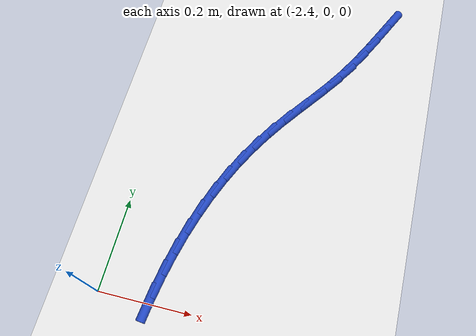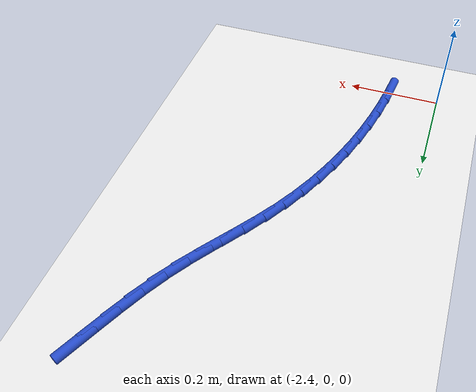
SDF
<sdf version="1.6">
 <world name="default">
  <model name="ground_plane">
   <static>1</static>
   <link name="link">
    <collision name="collision">
     <geometry><plane><normal>0 0 1</normal><size>100 100</size></plane></geometry>
     <surface><friction><ode><mu>100</mu><mu2>50</mu2></ode></friction></surface>
    </collision>
    <visual name="visual">
     <cast_shadows>0</cast_shadows>
     <geometry><plane><normal>0 0 1</normal><size>100 100</size></plane></geometry>
     <material>
      <script><uri>file://media/materials/scripts/gazebo.material</uri><name>Gazebo/WhiteGlow</name></script>
     </material>
    </visual>
   </link>
  </model>
  <model name="line">
   <link name="link_56">
    <pose>-1.920355423058988 0.793030612902918 0.01 0 1.57 1.1283428545215968</pose>
    <collision name="collision">
     <geometry><cylinder><radius>0.01</radius><length>0.08</length></cylinder></geometry>
    </collision>
    <visual name="visual">
     <material>
      <script><name>Gazebo/Blue</name><uri>file://media/materials/scripts/gazebo.material</uri></script>
     </material>
     <geometry><cylinder><radius>0.01</radius><length>0.08</length></cylinder></geometry>
    </visual>
   </link>
   <link name="link_57">
    <pose>-1.9414020889185035 0.7486078627954513 0.01 0 1.57 1.1195094449584073</pose>
    <collision name="collision">
     <geometry><cylinder><radius>0.01</radius><length>0.08</length></cylinder></geometry>
    </collision>
    <visual name="visual">
     <material>
      <script><name>Gazebo/Blue</name><uri>file://media/materials/scripts/gazebo.material</uri></script>
     </material>
     <geometry><cylinder><radius>0.01</radius><length>0.08</length></cylinder></geometry>
    </visual>
   </link>
   <link name="link_58">
    <pose>-1.962820146451315 0.7044144093955771 0.01 0 1.57 1.0927500852803989</pose>
    <collision name="collision">
     <geometry><cylinder><radius>0.01</radius><length>0.08</length></cylinder></geometry>
    </collision>
    <visual name="visual">
     <material>
      <script><name>Gazebo/Blue</name><uri>file://media/materials/scripts/gazebo.material</uri></script>
     </material>
     <geometry><cylinder><radius>0.01</radius><length>0.08</length></cylinder></geometry>
    </visual>
   </link>
   <link name="link_59">
    <pose>-1.9853999650549596 0.6608349686086172 0.01 0 1.57 1.048114588843749</pose>
    <collision name="collision">
     <geometry><cylinder><radius>0.01</radius><length>0.08</length></cylinder></geometry>
    </collision>
    <visual name="visual">
     <material>
      <script><name>Gazebo/Blue</name><uri>file://media/materials/scripts/gazebo.material</uri></script>
     </material>
     <geometry><cylinder><radius>0.01</radius><length>0.08</length></cylinder></geometry>
    </visual>
   </link>
   <link name="link_60">
    <pose>-2.009931914126972 0.6182542563398917 0.01 0 1.57 0.9909827484971178</pose>
    <collision name="collision">
     <geometry><cylinder><radius>0.01</radius><length>0.08</length></cylinder></geometry>
    </collision>
    <visual name="visual">
     <material>
      <script><name>Gazebo/Blue</name><uri>file://media/materials/scripts/gazebo.material</uri></script>
     </material>
     <geometry><cylinder><radius>0.01</radius><length>0.08</length></cylinder></geometry>
    </visual>
   </link>
   <link name="link_61">
    <pose>-2.036981251243193 0.5769513812375051 0.01 0 1.57 0.9507061022593876</pose>
    <collision name="collision">
     <geometry><cylinder><radius>0.01</radius><length>0.08</length></cylinder></geometry>
    </collision>
    <visual name="visual">
     <material>
      <script><name>Gazebo/Blue</name><uri>file://media/materials/scripts/gazebo.material</uri></script>
     </material>
     <geometry><cylinder><radius>0.01</radius><length>0.08</length></cylinder></geometry>
    </visual>
   </link>
   <link name="link_62">
    <pose>-2.0658011623294024 0.5365899165805582 0.01 0 1.57 0.9372060497208428</pose>
    <collision name="collision">
     <geometry><cylinder><radius>0.01</radius><length>0.08</length></cylinder></geometry>
    </collision>
    <visual name="visual">
     <material>
      <script><name>Gazebo/Blue</name><uri>file://media/materials/scripts/gazebo.material</uri></script>
     </material>
     <geometry><cylinder><radius>0.01</radius><length>0.08</length></cylinder></geometry>
    </visual>
   </link>
   <link name="link_63">
    <pose>-2.0951707699177327 0.49661103713361604 0.01 0 1.57 0.9502939800866536</pose>
    <collision name="collision">
     <geometry><cylinder><radius>0.01</radius><length>0.08</length></cylinder></geometry>
    </collision>
    <visual name="visual">
     <material>
      <script><name>Gazebo/Blue</name><uri>file://media/materials/scripts/gazebo.material</uri></script>
     </material>
     <geometry><cylinder><radius>0.01</radius><length>0.08</length></cylinder></geometry>
    </visual>
   </link>
   <link name="link_64">
    <pose>-2.123868551301867 0.45645561495895715 0.01 0 1.57 0.9901048696037019</pose>
    <collision name="collision">
     <geometry><cylinder><radius>0.01</radius><length>0.08</length></cylinder></geometry>
    </collision>
    <visual name="visual">
     <material>
      <script><name>Gazebo/Blue</name><uri>file://media/materials/scripts/gazebo.material</uri></script>
     </material>
     <geometry><cylinder><radius>0.01</radius><length>0.08</length></cylinder></geometry>
    </visual>
   </link>
   <link name="link_65">
    <pose>-2.150693639182263 0.41557350689869477 0.01 0 1.57 1.0445207208860667</pose>
    <collision name="collision">
     <geometry><cylinder><radius>0.01</radius><length>0.08</length></cylinder></geometry>
    </collision>
    <visual name="visual">
     <material>
      <script><name>Gazebo/Blue</name><uri>file://media/materials/scripts/gazebo.material</uri></script>
     </material>
     <geometry><cylinder><radius>0.01</radius><length>0.08</length></cylinder></geometry>
    </visual>
   </link>
   <link name="link_66">
    <pose>-2.175035613777686 0.37367140525763776 0.01 0 1.57 1.098842703640261</pose>
    <collision name="collision">
     <geometry><cylinder><radius>0.01</radius><length>0.08</length></cylinder></geometry>
    </collision>
    <visual name="visual">
     <material>
      <script><name>Gazebo/Blue</name><uri>file://media/materials/scripts/gazebo.material</uri></script>
     </material>
     <geometry><cylinder><radius>0.01</radius><length>0.08</length></cylinder></geometry>
    </visual>
   </link>
   <link name="link_67">
    <pose>-2.1969467460106338 0.33074426246234834 0.01 0 1.57 1.1518505495149305</pose>
    <collision name="collision">
     <geometry><cylinder><radius>0.01</radius><length>0.08</length></cylinder></geometry>
    </collision>
    <visual name="visual">
     <material>
      <script><name>Gazebo/Blue</name><uri>file://media/materials/scripts/gazebo.material</uri></script>
     </material>
     <geometry><cylinder><radius>0.01</radius><length>0.08</length></cylinder></geometry>
    </visual>
   </link>
   <link name="link_68">
    <pose>-2.2165144712211697 0.28680232691265733 0.01 0 1.57 1.2031449046796865</pose>
    <collision name="collision">
     <geometry><cylinder><radius>0.01</radius><length>0.08</length></cylinder></geometry>
    </collision>
    <visual name="visual">
     <material>
      <script><name>Gazebo/Blue</name><uri>file://media/materials/scripts/gazebo.material</uri></script>
     </material>
     <geometry><cylinder><radius>0.01</radius><length>0.08</length></cylinder></geometry>
    </visual>
   </link>
   <link name="link_69">
    <pose>-2.2338262247493557 0.2418558470083937 0.01 0 1.57 1.2523871941533664</pose>
    <collision name="collision">
     <geometry><cylinder><radius>0.01</radius><length>0.08</length></cylinder></geometry>
    </collision>
    <visual name="visual">
     <material>
      <script><name>Gazebo/Blue</name><uri>file://media/materials/scripts/gazebo.material</uri></script>
     </material>
     <geometry><cylinder><radius>0.01</radius><length>0.08</length></cylinder></geometry>
    </visual>
   </link>
   <link name="link_70">
    <pose>-2.2489694419352557 0.19591507114938753 0.01 0 1.57 1.2993066222670764</pose>
    <collision name="collision">
     <geometry><cylinder><radius>0.01</radius><length>0.08</length></cylinder></geometry>
    </collision>
    <visual name="visual">
     <material>
      <script><name>Gazebo/Blue</name><uri>file://media/materials/scripts/gazebo.material</uri></script>
     </material>
     <geometry><cylinder><radius>0.01</radius><length>0.08</length></cylinder></geometry>
    </visual>
   </link>
   <link name="link_71">
    <pose>-2.262031558118932 0.14899024773546832 0.01 0 1.57 1.3437017129529398</pose>
    <collision name="collision">
     <geometry><cylinder><radius>0.01</radius><length>0.08</length></cylinder></geometry>
    </collision>
    <visual name="visual">
     <material>
      <script><name>Gazebo/Blue</name><uri>file://media/materials/scripts/gazebo.material</uri></script>
     </material>
     <geometry><cylinder><radius>0.01</radius><length>0.08</length></cylinder></geometry>
    </visual>
   </link>
   <link name="link_72">
    <pose>-2.273100008640448 0.10109162516646636 0.01 0 1.57 1.3854372518461984</pose>
    <collision name="collision">
     <geometry><cylinder><radius>0.01</radius><length>0.08</length></cylinder></geometry>
    </collision>
    <visual name="visual">
     <material>
      <script><name>Gazebo/Blue</name><uri>file://media/materials/scripts/gazebo.material</uri></script>
     </material>
     <geometry><cylinder><radius>0.01</radius><length>0.08</length></cylinder></geometry>
    </visual>
   </link>
   <link name="link_73">
    <pose>-2.2822622288398655 0.05222945184221122 0.01 0 1.57 1.4244378693734112</pose>
    <collision name="collision">
     <geometry><cylinder><radius>0.01</radius><length>0.08</length></cylinder></geometry>
    </collision>
    <visual name="visual">
     <material>
      <script><name>Gazebo/Blue</name><uri>file://media/materials/scripts/gazebo.material</uri></script>
     </material>
     <geometry><cylinder><radius>0.01</radius><length>0.08</length></cylinder></geometry>
    </visual>
   </link>
   <link name="link_74">
    <pose>-2.289605654057249 0.0024139761625326522 0.01 0 1.57 1.4606795866852578</pose>
    <collision name="collision">
     <geometry><cylinder><radius>0.01</radius><length>0.08</length></cylinder></geometry>
    </collision>
    <visual name="visual">
     <material>
      <script><name>Gazebo/Blue</name><uri>file://media/materials/scripts/gazebo.material</uri></script>
     </material>
     <geometry><cylinder><radius>0.01</radius><length>0.08</length></cylinder></geometry>
    </visual>
   </link>
  </model>
 </world>
</sdf>
